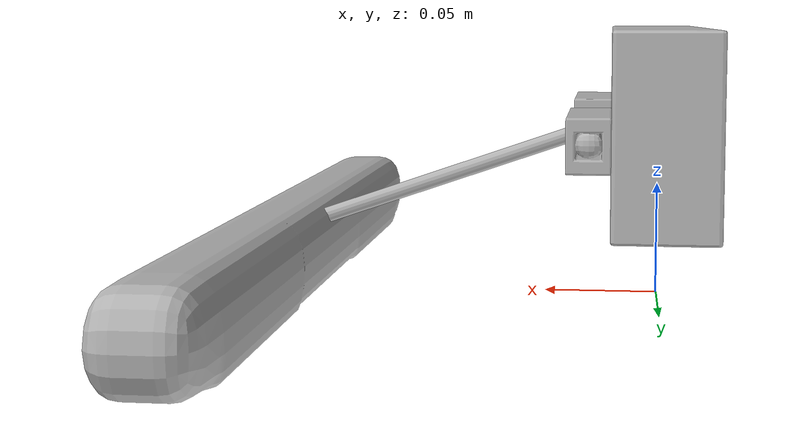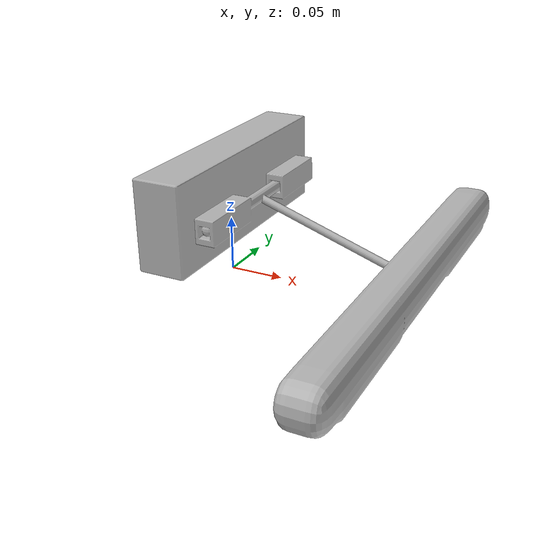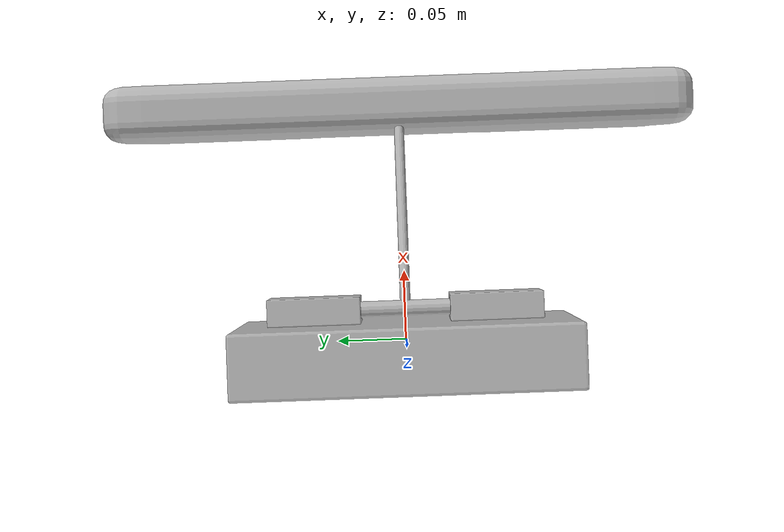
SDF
<?xml version='1.0'?>
<sdf version='1.4'>
  <model name='179'>
    <pose>0 0 0 0 0 0</pose>
    <static>true</static>
    <link name='link'>
      <collision name='collision'>
        <pose>0 0 0 0 0 0</pose>
        <geometry>
          <box>
            <size>0.210021 0.41806 2</size>
          </box>
        </geometry>
      </collision>
      <visual name='visual'>
        <pose>0 0 0 0 0 0</pose>
        <geometry>
          <mesh><uri>model://179/179.dae</uri></mesh>
        </geometry>
      </visual>
    </link>
  </model>
</sdf>
